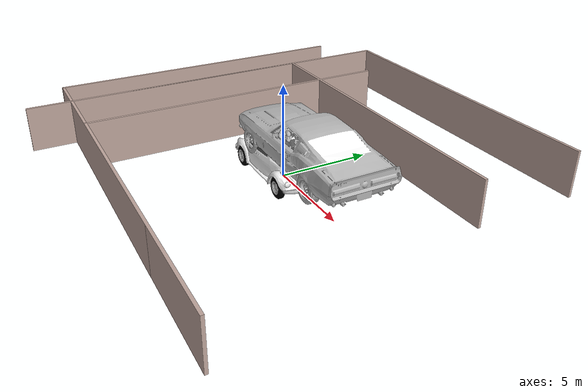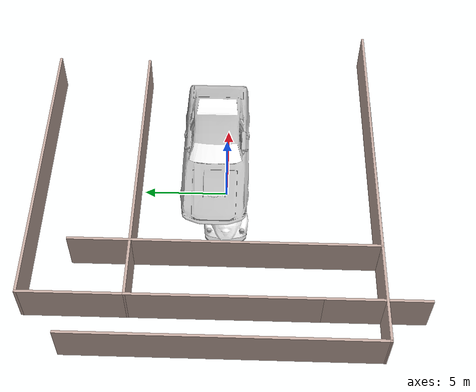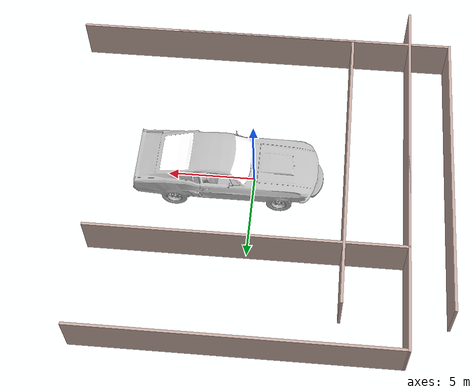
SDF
<sdf version="1.5">
 <world name="default">
  <include><uri>model://sun</uri></include>
  <scene><sky><time>12</time></sky><shadows>0</shadows></scene>
  <include>
   <uri>model://wall</uri>
   <name>north_wall</name>
   <pose>2.9 0 0.2 0 0 1.57</pose>
   <static>true</static>
  </include>
  <include>
   <uri>model://wall</uri>
   <name>south_wall</name>
   <pose>-2.9 0 0.2 0 0 1.57</pose>
   <static>true</static>
  </include>
  <include>
   <uri>model://wall</uri>
   <name>east_wall</name>
   <pose>0 -2.9 0.2 0 0 0</pose>
   <static>true</static>
  </include>
  <include>
   <uri>model://wall</uri>
   <name>west_wall</name>
   <pose>0 2.9 0.2 0 0 0</pose>
   <static>true</static>
  </include>
  <include><uri>model://car2</uri><static>true</static><pose>-0.85 0 0.0 0.0 0.0 3.14</pose></include>
  <include><uri>model://car4</uri><static>true</static><pose>1.4 0.7 0.00 0.0 0.0 0</pose></include>
  <physics type="ode">
   <max_step_size>0.001</max_step_size>
   <real_time_update_rate>1000</real_time_update_rate>
  </physics>
 </world>
</sdf>

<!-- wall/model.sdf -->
<sdf version='1.6'>
  <model name='wall'>
    <pose frame=''>-1.26581 1.80502 0 0 -0 0</pose>
    <link name='Wall_0'>
      <collision name='Wall_0_Collision'>
        <geometry>
          <box>
            <size>16.5 0.15 2.5</size>
          </box>
        </geometry>
        <pose frame=''>0 0 1.25 0 -0 0</pose>
      </collision>
      <visual name='Wall_0_Visual'>
        <pose frame=''>0 0 1.25 0 -0 0</pose>
        <geometry>
          <box>
            <size>16.5 0.15 2.5</size>
          </box>
        </geometry>
        <material>
          <script>
            <uri>file://media/materials/scripts/gazebo.material</uri>
            <name>Gazebo/Grey</name>
          </script>
          <ambient>0.760784 0.662745 0.627451 1</ambient>
        </material>
        <meta>
          <layer>0</layer>
        </meta>
      </visual>
      <pose frame=''>-8.71419 -1.8e-05 0 0 0 -1.5708</pose>
    </link>
    <link name='Wall_2'>
      <collision name='Wall_2_Collision'>
        <geometry>
          <box>
            <size>17.5784 0.15 2.5</size>
          </box>
        </geometry>
        <pose frame=''>0 0 1.25 0 -0 0</pose>
      </collision>
      <visual name='Wall_2_Visual'>
        <pose frame=''>0 0 1.25 0 -0 0</pose>
        <geometry>
          <box>
            <size>17.5784 0.15 2.5</size>
          </box>
        </geometry>
        <material>
          <script>
            <uri>file://media/materials/scripts/gazebo.material</uri>
            <name>Gazebo/Grey</name>
          </script>
          <ambient>0.760784 0.662745 0.627451 1</ambient>
        </material>
        <meta>
          <layer>0</layer>
        </meta>
      </visual>
      <pose frame=''>0 8.17066 0 0 0 -0.000496</pose>
    </link>
    <static>1</static>
  </model>
</sdf>

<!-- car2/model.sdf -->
<sdf version='1.5'>
  <model name='car2'>
    <static>true</static>
      <link name='link'>
        <pose frame=''>0 0 1.2 0 0 -1.57</pose>

        <visual name='visual'>
        <cast_shadows>false</cast_shadows>
          <geometry>
            <mesh>
              <scale>0.005 0.005 0.005</scale>
              <uri>model://car2/meshes/car2.dae</uri>
            </mesh>
          </geometry>

        </visual>
      </link>
  </model>
</sdf>

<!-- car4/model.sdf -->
<sdf version='1.5'>
  <model name='car4'>
    <static>true</static>
      <link name='link'>
        <pose frame=''>0 0 0.9 1.57 0 1.57</pose>

        <visual name='visual'>
        <cast_shadows>false</cast_shadows>
          <geometry>
            <mesh>
              <scale>1 1 1</scale>
              <uri>model://car4/meshes/car4.dae</uri>
            </mesh>
          </geometry>

        </visual>
      </link>
  </model>
</sdf>
